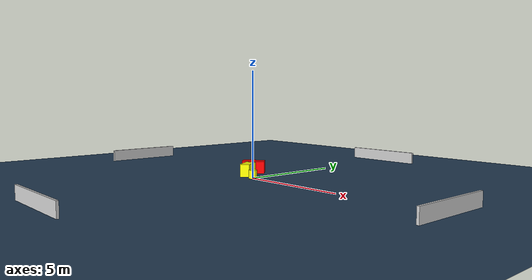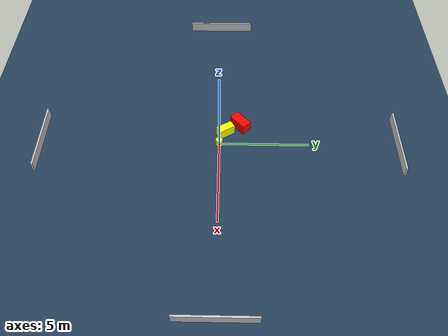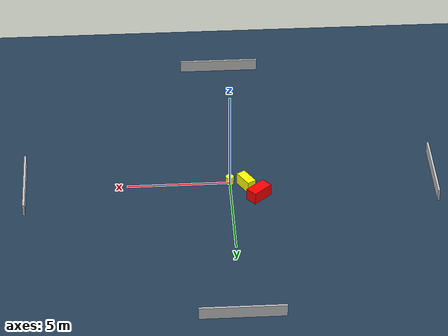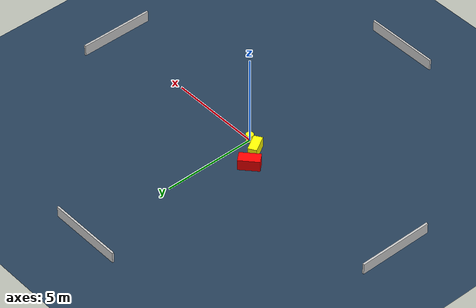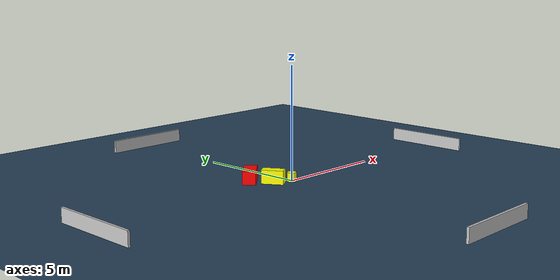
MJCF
<?xml version="1.0" ?>
<mujoco model="generated_environment">
  <option timestep="0.01" integrator="RK4" cone="elliptic"/>
  <default>
    <geom density="1"/>
  </default>
  <asset>
    <texture builtin="gradient" height="3072" name="skybox" rgb1="0.3 0.5 0.7" rgb2="0 0 0" type="skybox" width="512"/>
    <texture builtin="checker" height="300" name="groundplane" rgb1="0.2 0.3 0.4" rgb2="0.1 0.2 0.3" type="2d" width="300"/>
    <material name="groundplane" reflectance="0.2" texrepeat="5 5" texture="groundplane"/>
  </asset>
  <worldbody>
    <light dir="0 0 -1" directional="true" pos="0 0 1.5"/>
    <geom condim="3" friction="0.5 0.005 0.001" material="groundplane" name="floor" pos="0 0 0" size="0 0 0.05" type="plane"/>
    <body name="walls">
      <geom name="wall_1" condim="4" pos="-10.0 0.0 0.3" rgba="0.800000011920929 0.800000011920929 0.800000011920929 1.0" size="0.05 2.0 0.3" type="box"/>
      <geom name="wall_2" condim="4" pos="10.0 0.0 0.3" rgba="0.800000011920929 0.800000011920929 0.800000011920929 1.0" size="0.05 2.0 0.3" type="box"/>
      <geom name="wall_3" condim="4" pos="0.0 -10.0 0.3" rgba="0.800000011920929 0.800000011920929 0.800000011920929 1.0" size="2.0 0.05 0.3" type="box"/>
      <geom name="wall_4" condim="4" pos="0.0 10.0 0.3" rgba="0.800000011920929 0.800000011920929 0.800000011920929 1.0" size="2.0 0.05 0.3" type="box"/>
    </body>
    <body name="robot">
      <joint name="joint_x" type="slide" pos="0 0 0" axis="1 0 0"/>
      <joint name="joint_y" type="slide" pos="0 0 0" axis="0 1 0"/>
      <geom name="robot" type="cylinder" pos="0.0 0.0 0.2" size="0.2 0.2 0.0" mass="5.0" friction="1.0 0.005 0.0001" condim="4" rgba="1.0 1.0 0.0 1.0"/>
    </body>
    <body name="obstacle_1_movable">
      <geom name="obstacle_1_movable" condim="4" pos="-0.7831366334051767 0.3470279404483424 0.3" euler="0 0 300.7473336981059" friction="0.0 0.005 0.001" rgba="1.0 1.0 0.0 1.0" size="0.4793834431429243 0.22915934397529458 0.3" type="box" mass="0.1"/>
      <joint type="free"/>
    </body>
    <body name="obstacle_2_static">
      <geom name="obstacle_2_static" condim="4" pos="-1.3416634670384486 1.1993281719351505 0.3" euler="0 0 131.7405443704051" friction="0.0 0.005 0.001" rgba="1.0 0.0 0.0 1.0" size="0.2908407922072073 0.546298695504717 0.3" type="box"/>
    </body>
  </worldbody>
  <actuator>
    <motor name="actuator_x" joint="joint_x" gear="1" ctrlrange="-1 1"/>
    <motor name="actuator_y" joint="joint_y" gear="1" ctrlrange="-1 1"/>
  </actuator>
</mujoco>
